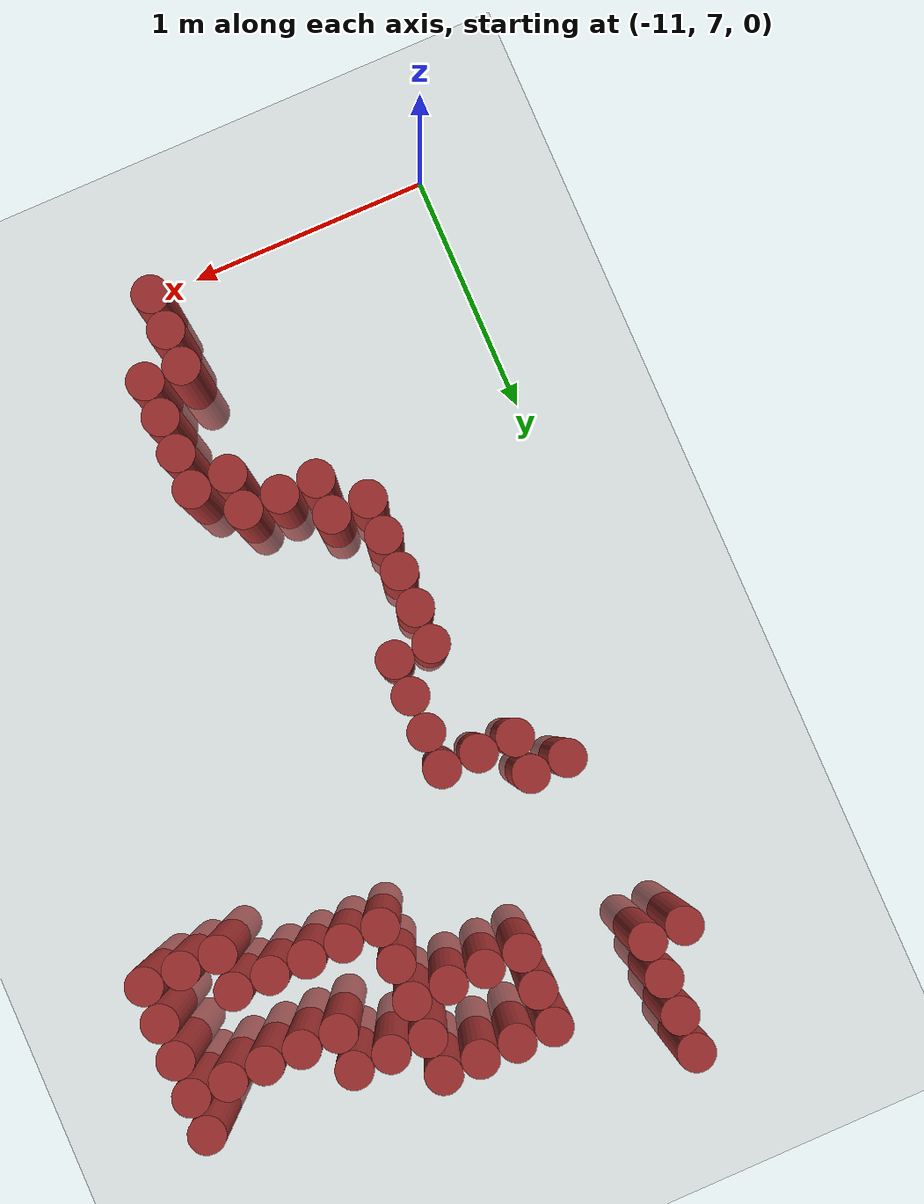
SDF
<sdf version="1.6">
 <world name="default">
  <model name="ground_plane">
   <static>1</static>
   <link name="link">
    <collision name="collision">
     <geometry><plane><normal>0 0 1</normal><size>100 100</size></plane></geometry>
     <surface><friction><ode><mu>100</mu><mu2>50</mu2></ode></friction></surface>
    </collision>
    <visual name="visual">
     <cast_shadows>0</cast_shadows>
     <geometry><plane><normal>0 0 1</normal><size>100 100</size></plane></geometry>
     <material>
      <script><uri>file://media/materials/scripts/gazebo.material</uri><name>Gazebo/Grey</name></script>
     </material>
    </visual>
   </link>
  </model>
  <model name="unit_cylinder_327">
   <static>1</static>
   <pose>-10.725 10.125 0 0 -0 0</pose>
   <link name="link">
    <inertial>
     <mass>1</mass>
     <inertia><ixx>0.145833</ixx><ixy>0</ixy><ixz>0</ixz><iyy>0.145833</iyy><iyz>0</iyz><izz>0.125</izz></inertia>
    </inertial>
    <collision name="collision">
     <geometry><cylinder><radius>0.075</radius><length>1</length></cylinder></geometry>
    </collision>
    <visual name="visual">
     <geometry><cylinder><radius>0.075</radius><length>1</length></cylinder></geometry>
     <material><ambient>0.648 0.192 0.192 1</ambient><diffuse>0.648 0.192 0.192 1</diffuse></material>
     <material>
      <script><name>Gazebo/Grey</name><uri>file://media/materials/scripts/gazebo.material</uri></script>
     </material>
    </visual>
   </link>
  </model>
  <model name="unit_cylinder_345">
   <static>1</static>
   <pose>-10.575 9.375 0 0 -0 0</pose>
   <link name="link">
    <inertial>
     <mass>1</mass>
     <inertia><ixx>0.145833</ixx><ixy>0</ixy><ixz>0</ixz><iyy>0.145833</iyy><iyz>0</iyz><izz>0.125</izz></inertia>
    </inertial>
    <collision name="collision">
     <geometry><cylinder><radius>0.075</radius><length>1</length></cylinder></geometry>
    </collision>
    <visual name="visual">
     <geometry><cylinder><radius>0.075</radius><length>1</length></cylinder></geometry>
     <material><ambient>0.648 0.192 0.192 1</ambient><diffuse>0.648 0.192 0.192 1</diffuse></material>
     <material>
      <script><name>Gazebo/Grey</name><uri>file://media/materials/scripts/gazebo.material</uri></script>
     </material>
    </visual>
   </link>
  </model>
  <model name="unit_cylinder_346">
   <static>1</static>
   <pose>-10.575 10.125 0 0 -0 0</pose>
   <link name="link">
    <inertial>
     <mass>1</mass>
     <inertia><ixx>0.145833</ixx><ixy>0</ixy><ixz>0</ixz><iyy>0.145833</iyy><iyz>0</iyz><izz>0.125</izz></inertia>
    </inertial>
    <collision name="collision">
     <geometry><cylinder><radius>0.075</radius><length>1</length></cylinder></geometry>
    </collision>
    <visual name="visual">
     <geometry><cylinder><radius>0.075</radius><length>1</length></cylinder></geometry>
     <material><ambient>0.648 0.192 0.192 1</ambient><diffuse>0.648 0.192 0.192 1</diffuse></material>
     <material>
      <script><name>Gazebo/Grey</name><uri>file://media/materials/scripts/gazebo.material</uri></script>
     </material>
    </visual>
   </link>
  </model>
  <model name="unit_cylinder_347">
   <static>1</static>
   <pose>-10.575 10.275 0 0 -0 0</pose>
   <link name="link">
    <inertial>
     <mass>1</mass>
     <inertia><ixx>0.145833</ixx><ixy>0</ixy><ixz>0</ixz><iyy>0.145833</iyy><iyz>0</iyz><izz>0.125</izz></inertia>
    </inertial>
    <collision name="collision">
     <geometry><cylinder><radius>0.075</radius><length>1</length></cylinder></geometry>
    </collision>
    <visual name="visual">
     <geometry><cylinder><radius>0.075</radius><length>1</length></cylinder></geometry>
     <material><ambient>0.648 0.192 0.192 1</ambient><diffuse>0.648 0.192 0.192 1</diffuse></material>
     <material>
      <script><name>Gazebo/Grey</name><uri>file://media/materials/scripts/gazebo.material</uri></script>
     </material>
    </visual>
   </link>
  </model>
  <model name="unit_cylinder_348">
   <static>1</static>
   <pose>-10.575 10.425 0 0 -0 0</pose>
   <link name="link">
    <inertial>
     <mass>1</mass>
     <inertia><ixx>0.145833</ixx><ixy>0</ixy><ixz>0</ixz><iyy>0.145833</iyy><iyz>0</iyz><izz>0.125</izz></inertia>
    </inertial>
    <collision name="collision">
     <geometry><cylinder><radius>0.075</radius><length>1</length></cylinder></geometry>
    </collision>
    <visual name="visual">
     <geometry><cylinder><radius>0.075</radius><length>1</length></cylinder></geometry>
     <material><ambient>0.648 0.192 0.192 1</ambient><diffuse>0.648 0.192 0.192 1</diffuse></material>
     <material>
      <script><name>Gazebo/Grey</name><uri>file://media/materials/scripts/gazebo.material</uri></script>
     </material>
    </visual>
   </link>
  </model>
  <model name="unit_cylinder_349">
   <static>1</static>
   <pose>-10.575 10.575 0 0 -0 0</pose>
   <link name="link">
    <inertial>
     <mass>1</mass>
     <inertia><ixx>0.145833</ixx><ixy>0</ixy><ixz>0</ixz><iyy>0.145833</iyy><iyz>0</iyz><izz>0.125</izz></inertia>
    </inertial>
    <collision name="collision">
     <geometry><cylinder><radius>0.075</radius><length>1</length></cylinder></geometry>
    </collision>
    <visual name="visual">
     <geometry><cylinder><radius>0.075</radius><length>1</length></cylinder></geometry>
     <material><ambient>0.648 0.192 0.192 1</ambient><diffuse>0.648 0.192 0.192 1</diffuse></material>
     <material>
      <script><name>Gazebo/Grey</name><uri>file://media/materials/scripts/gazebo.material</uri></script>
     </material>
    </visual>
   </link>
  </model>
  <model name="unit_cylinder_370">
   <static>1</static>
   <pose>-10.425 9.225 0 0 -0 0</pose>
   <link name="link">
    <inertial>
     <mass>1</mass>
     <inertia><ixx>0.145833</ixx><ixy>0</ixy><ixz>0</ixz><iyy>0.145833</iyy><iyz>0</iyz><izz>0.125</izz></inertia>
    </inertial>
    <collision name="collision">
     <geometry><cylinder><radius>0.075</radius><length>1</length></cylinder></geometry>
    </collision>
    <visual name="visual">
     <geometry><cylinder><radius>0.075</radius><length>1</length></cylinder></geometry>
     <material><ambient>0.648 0.192 0.192 1</ambient><diffuse>0.648 0.192 0.192 1</diffuse></material>
     <material>
      <script><name>Gazebo/Grey</name><uri>file://media/materials/scripts/gazebo.material</uri></script>
     </material>
    </visual>
   </link>
  </model>
  <model name="unit_cylinder_371">
   <static>1</static>
   <pose>-10.425 9.375 0 0 -0 0</pose>
   <link name="link">
    <inertial>
     <mass>1</mass>
     <inertia><ixx>0.145833</ixx><ixy>0</ixy><ixz>0</ixz><iyy>0.145833</iyy><iyz>0</iyz><izz>0.125</izz></inertia>
    </inertial>
    <collision name="collision">
     <geometry><cylinder><radius>0.075</radius><length>1</length></cylinder></geometry>
    </collision>
    <visual name="visual">
     <geometry><cylinder><radius>0.075</radius><length>1</length></cylinder></geometry>
     <material><ambient>0.648 0.192 0.192 1</ambient><diffuse>0.648 0.192 0.192 1</diffuse></material>
     <material>
      <script><name>Gazebo/Grey</name><uri>file://media/materials/scripts/gazebo.material</uri></script>
     </material>
    </visual>
   </link>
  </model>
  <model name="unit_cylinder_380">
   <static>1</static>
   <pose>-10.275 8.175 0 0 -0 0</pose>
   <link name="link">
    <inertial>
     <mass>1</mass>
     <inertia><ixx>0.145833</ixx><ixy>0</ixy><ixz>0</ixz><iyy>0.145833</iyy><iyz>0</iyz><izz>0.125</izz></inertia>
    </inertial>
    <collision name="collision">
     <geometry><cylinder><radius>0.075</radius><length>1</length></cylinder></geometry>
    </collision>
    <visual name="visual">
     <geometry><cylinder><radius>0.075</radius><length>1</length></cylinder></geometry>
     <material><ambient>0.648 0.192 0.192 1</ambient><diffuse>0.648 0.192 0.192 1</diffuse></material>
     <material>
      <script><name>Gazebo/Grey</name><uri>file://media/materials/scripts/gazebo.material</uri></script>
     </material>
    </visual>
   </link>
  </model>
  <model name="unit_cylinder_381">
   <static>1</static>
   <pose>-10.275 8.325 0 0 -0 0</pose>
   <link name="link">
    <inertial>
     <mass>1</mass>
     <inertia><ixx>0.145833</ixx><ixy>0</ixy><ixz>0</ixz><iyy>0.145833</iyy><iyz>0</iyz><izz>0.125</izz></inertia>
    </inertial>
    <collision name="collision">
     <geometry><cylinder><radius>0.075</radius><length>1</length></cylinder></geometry>
    </collision>
    <visual name="visual">
     <geometry><cylinder><radius>0.075</radius><length>1</length></cylinder></geometry>
     <material><ambient>0.648 0.192 0.192 1</ambient><diffuse>0.648 0.192 0.192 1</diffuse></material>
     <material>
      <script><name>Gazebo/Grey</name><uri>file://media/materials/scripts/gazebo.material</uri></script>
     </material>
    </visual>
   </link>
  </model>
  <model name="unit_cylinder_382">
   <static>1</static>
   <pose>-10.275 8.475 0 0 -0 0</pose>
   <link name="link">
    <inertial>
     <mass>1</mass>
     <inertia><ixx>0.145833</ixx><ixy>0</ixy><ixz>0</ixz><iyy>0.145833</iyy><iyz>0</iyz><izz>0.125</izz></inertia>
    </inertial>
    <collision name="collision">
     <geometry><cylinder><radius>0.075</radius><length>1</length></cylinder></geometry>
    </collision>
    <visual name="visual">
     <geometry><cylinder><radius>0.075</radius><length>1</length></cylinder></geometry>
     <material><ambient>0.648 0.192 0.192 1</ambient><diffuse>0.648 0.192 0.192 1</diffuse></material>
     <material>
      <script><name>Gazebo/Grey</name><uri>file://media/materials/scripts/gazebo.material</uri></script>
     </material>
    </visual>
   </link>
  </model>
  <model name="unit_cylinder_383">
   <static>1</static>
   <pose>-10.275 8.625 0 0 -0 0</pose>
   <link name="link">
    <inertial>
     <mass>1</mass>
     <inertia><ixx>0.145833</ixx><ixy>0</ixy><ixz>0</ixz><iyy>0.145833</iyy><iyz>0</iyz><izz>0.125</izz></inertia>
    </inertial>
    <collision name="collision">
     <geometry><cylinder><radius>0.075</radius><length>1</length></cylinder></geometry>
    </collision>
    <visual name="visual">
     <geometry><cylinder><radius>0.075</radius><length>1</length></cylinder></geometry>
     <material><ambient>0.648 0.192 0.192 1</ambient><diffuse>0.648 0.192 0.192 1</diffuse></material>
     <material>
      <script><name>Gazebo/Grey</name><uri>file://media/materials/scripts/gazebo.material</uri></script>
     </material>
    </visual>
   </link>
  </model>
  <model name="unit_cylinder_384">
   <static>1</static>
   <pose>-10.275 8.775 0 0 -0 0</pose>
   <link name="link">
    <inertial>
     <mass>1</mass>
     <inertia><ixx>0.145833</ixx><ixy>0</ixy><ixz>0</ixz><iyy>0.145833</iyy><iyz>0</iyz><izz>0.125</izz></inertia>
    </inertial>
    <collision name="collision">
     <geometry><cylinder><radius>0.075</radius><length>1</length></cylinder></geometry>
    </collision>
    <visual name="visual">
     <geometry><cylinder><radius>0.075</radius><length>1</length></cylinder></geometry>
     <material><ambient>0.648 0.192 0.192 1</ambient><diffuse>0.648 0.192 0.192 1</diffuse></material>
     <material>
      <script><name>Gazebo/Grey</name><uri>file://media/materials/scripts/gazebo.material</uri></script>
     </material>
    </visual>
   </link>
  </model>
  <model name="unit_cylinder_385">
   <static>1</static>
   <pose>-10.275 9.225 0 0 -0 0</pose>
   <link name="link">
    <inertial>
     <mass>1</mass>
     <inertia><ixx>0.145833</ixx><ixy>0</ixy><ixz>0</ixz><iyy>0.145833</iyy><iyz>0</iyz><izz>0.125</izz></inertia>
    </inertial>
    <collision name="collision">
     <geometry><cylinder><radius>0.075</radius><length>1</length></cylinder></geometry>
    </collision>
    <visual name="visual">
     <geometry><cylinder><radius>0.075</radius><length>1</length></cylinder></geometry>
     <material><ambient>0.648 0.192 0.192 1</ambient><diffuse>0.648 0.192 0.192 1</diffuse></material>
     <material>
      <script><name>Gazebo/Grey</name><uri>file://media/materials/scripts/gazebo.material</uri></script>
     </material>
    </visual>
   </link>
  </model>
  <model name="unit_cylinder_403">
   <static>1</static>
   <pose>-10.125 8.025 0 0 -0 0</pose>
   <link name="link">
    <inertial>
     <mass>1</mass>
     <inertia><ixx>0.145833</ixx><ixy>0</ixy><ixz>0</ixz><iyy>0.145833</iyy><iyz>0</iyz><izz>0.125</izz></inertia>
    </inertial>
    <collision name="collision">
     <geometry><cylinder><radius>0.075</radius><length>1</length></cylinder></geometry>
    </collision>
    <visual name="visual">
     <geometry><cylinder><radius>0.075</radius><length>1</length></cylinder></geometry>
     <material><ambient>0.648 0.192 0.192 1</ambient><diffuse>0.648 0.192 0.192 1</diffuse></material>
     <material>
      <script><name>Gazebo/Grey</name><uri>file://media/materials/scripts/gazebo.material</uri></script>
     </material>
    </visual>
   </link>
  </model>
  <model name="unit_cylinder_404">
   <static>1</static>
   <pose>-10.125 8.175 0 0 -0 0</pose>
   <link name="link">
    <inertial>
     <mass>1</mass>
     <inertia><ixx>0.145833</ixx><ixy>0</ixy><ixz>0</ixz><iyy>0.145833</iyy><iyz>0</iyz><izz>0.125</izz></inertia>
    </inertial>
    <collision name="collision">
     <geometry><cylinder><radius>0.075</radius><length>1</length></cylinder></geometry>
    </collision>
    <visual name="visual">
     <geometry><cylinder><radius>0.075</radius><length>1</length></cylinder></geometry>
     <material><ambient>0.648 0.192 0.192 1</ambient><diffuse>0.648 0.192 0.192 1</diffuse></material>
     <material>
      <script><name>Gazebo/Grey</name><uri>file://media/materials/scripts/gazebo.material</uri></script>
     </material>
    </visual>
   </link>
  </model>
  <model name="unit_cylinder_405">
   <static>1</static>
   <pose>-10.125 8.775 0 0 -0 0</pose>
   <link name="link">
    <inertial>
     <mass>1</mass>
     <inertia><ixx>0.145833</ixx><ixy>0</ixy><ixz>0</ixz><iyy>0.145833</iyy><iyz>0</iyz><izz>0.125</izz></inertia>
    </inertial>
    <collision name="collision">
     <geometry><cylinder><radius>0.075</radius><length>1</length></cylinder></geometry>
    </collision>
    <visual name="visual">
     <geometry><cylinder><radius>0.075</radius><length>1</length></cylinder></geometry>
     <material><ambient>0.648 0.192 0.192 1</ambient><diffuse>0.648 0.192 0.192 1</diffuse></material>
     <material>
      <script><name>Gazebo/Grey</name><uri>file://media/materials/scripts/gazebo.material</uri></script>
     </material>
    </visual>
   </link>
  </model>
  <model name="unit_cylinder_406">
   <static>1</static>
   <pose>-10.125 8.925 0 0 -0 0</pose>
   <link name="link">
    <inertial>
     <mass>1</mass>
     <inertia><ixx>0.145833</ixx><ixy>0</ixy><ixz>0</ixz><iyy>0.145833</iyy><iyz>0</iyz><izz>0.125</izz></inertia>
    </inertial>
    <collision name="collision">
     <geometry><cylinder><radius>0.075</radius><length>1</length></cylinder></geometry>
    </collision>
    <visual name="visual">
     <geometry><cylinder><radius>0.075</radius><length>1</length></cylinder></geometry>
     <material><ambient>0.648 0.192 0.192 1</ambient><diffuse>0.648 0.192 0.192 1</diffuse></material>
     <material>
      <script><name>Gazebo/Grey</name><uri>file://media/materials/scripts/gazebo.material</uri></script>
     </material>
    </visual>
   </link>
  </model>
  <model name="unit_cylinder_407">
   <static>1</static>
   <pose>-10.125 9.075 0 0 -0 0</pose>
   <link name="link">
    <inertial>
     <mass>1</mass>
     <inertia><ixx>0.145833</ixx><ixy>0</ixy><ixz>0</ixz><iyy>0.145833</iyy><iyz>0</iyz><izz>0.125</izz></inertia>
    </inertial>
    <collision name="collision">
     <geometry><cylinder><radius>0.075</radius><length>1</length></cylinder></geometry>
    </collision>
    <visual name="visual">
     <geometry><cylinder><radius>0.075</radius><length>1</length></cylinder></geometry>
     <material><ambient>0.648 0.192 0.192 1</ambient><diffuse>0.648 0.192 0.192 1</diffuse></material>
     <material>
      <script><name>Gazebo/Grey</name><uri>file://media/materials/scripts/gazebo.material</uri></script>
     </material>
    </visual>
   </link>
  </model>
  <model name="unit_cylinder_408">
   <static>1</static>
   <pose>-10.125 9.225 0 0 -0 0</pose>
   <link name="link">
    <inertial>
     <mass>1</mass>
     <inertia><ixx>0.145833</ixx><ixy>0</ixy><ixz>0</ixz><iyy>0.145833</iyy><iyz>0</iyz><izz>0.125</izz></inertia>
    </inertial>
    <collision name="collision">
     <geometry><cylinder><radius>0.075</radius><length>1</length></cylinder></geometry>
    </collision>
    <visual name="visual">
     <geometry><cylinder><radius>0.075</radius><length>1</length></cylinder></geometry>
     <material><ambient>0.648 0.192 0.192 1</ambient><diffuse>0.648 0.192 0.192 1</diffuse></material>
     <material>
      <script><name>Gazebo/Grey</name><uri>file://media/materials/scripts/gazebo.material</uri></script>
     </material>
    </visual>
   </link>
  </model>
  <model name="unit_cylinder_409">
   <static>1</static>
   <pose>-10.125 9.975 0 0 -0 0</pose>
   <link name="link">
    <inertial>
     <mass>1</mass>
     <inertia><ixx>0.145833</ixx><ixy>0</ixy><ixz>0</ixz><iyy>0.145833</iyy><iyz>0</iyz><izz>0.125</izz></inertia>
    </inertial>
    <collision name="collision">
     <geometry><cylinder><radius>0.075</radius><length>1</length></cylinder></geometry>
    </collision>
    <visual name="visual">
     <geometry><cylinder><radius>0.075</radius><length>1</length></cylinder></geometry>
     <material><ambient>0.648 0.192 0.192 1</ambient><diffuse>0.648 0.192 0.192 1</diffuse></material>
     <material>
      <script><name>Gazebo/Grey</name><uri>file://media/materials/scripts/gazebo.material</uri></script>
     </material>
    </visual>
   </link>
  </model>
  <model name="unit_cylinder_410">
   <static>1</static>
   <pose>-10.125 10.125 0 0 -0 0</pose>
   <link name="link">
    <inertial>
     <mass>1</mass>
     <inertia><ixx>0.145833</ixx><ixy>0</ixy><ixz>0</ixz><iyy>0.145833</iyy><iyz>0</iyz><izz>0.125</izz></inertia>
    </inertial>
    <collision name="collision">
     <geometry><cylinder><radius>0.075</radius><length>1</length></cylinder></geometry>
    </collision>
    <visual name="visual">
     <geometry><cylinder><radius>0.075</radius><length>1</length></cylinder></geometry>
     <material><ambient>0.648 0.192 0.192 1</ambient><diffuse>0.648 0.192 0.192 1</diffuse></material>
     <material>
      <script><name>Gazebo/Grey</name><uri>file://media/materials/scripts/gazebo.material</uri></script>
     </material>
    </visual>
   </link>
  </model>
  <model name="unit_cylinder_411">
   <static>1</static>
   <pose>-10.125 10.275 0 0 -0 0</pose>
   <link name="link">
    <inertial>
     <mass>1</mass>
     <inertia><ixx>0.145833</ixx><ixy>0</ixy><ixz>0</ixz><iyy>0.145833</iyy><iyz>0</iyz><izz>0.125</izz></inertia>
    </inertial>
    <collision name="collision">
     <geometry><cylinder><radius>0.075</radius><length>1</length></cylinder></geometry>
    </collision>
    <visual name="visual">
     <geometry><cylinder><radius>0.075</radius><length>1</length></cylinder></geometry>
     <material><ambient>0.648 0.192 0.192 1</ambient><diffuse>0.648 0.192 0.192 1</diffuse></material>
     <material>
      <script><name>Gazebo/Grey</name><uri>file://media/materials/scripts/gazebo.material</uri></script>
     </material>
    </visual>
   </link>
  </model>
  <model name="unit_cylinder_421">
   <static>1</static>
   <pose>-9.975 8.025 0 0 -0 0</pose>
   <link name="link">
    <inertial>
     <mass>1</mass>
     <inertia><ixx>0.145833</ixx><ixy>0</ixy><ixz>0</ixz><iyy>0.145833</iyy><iyz>0</iyz><izz>0.125</izz></inertia>
    </inertial>
    <collision name="collision">
     <geometry><cylinder><radius>0.075</radius><length>1</length></cylinder></geometry>
    </collision>
    <visual name="visual">
     <geometry><cylinder><radius>0.075</radius><length>1</length></cylinder></geometry>
     <material><ambient>0.648 0.192 0.192 1</ambient><diffuse>0.648 0.192 0.192 1</diffuse></material>
     <material>
      <script><name>Gazebo/Grey</name><uri>file://media/materials/scripts/gazebo.material</uri></script>
     </material>
    </visual>
   </link>
  </model>
  <model name="unit_cylinder_422">
   <static>1</static>
   <pose>-9.975 9.975 0 0 -0 0</pose>
   <link name="link">
    <inertial>
     <mass>1</mass>
     <inertia><ixx>0.145833</ixx><ixy>0</ixy><ixz>0</ixz><iyy>0.145833</iyy><iyz>0</iyz><izz>0.125</izz></inertia>
    </inertial>
    <collision name="collision">
     <geometry><cylinder><radius>0.075</radius><length>1</length></cylinder></geometry>
    </collision>
    <visual name="visual">
     <geometry><cylinder><radius>0.075</radius><length>1</length></cylinder></geometry>
     <material><ambient>0.648 0.192 0.192 1</ambient><diffuse>0.648 0.192 0.192 1</diffuse></material>
     <material>
      <script><name>Gazebo/Grey</name><uri>file://media/materials/scripts/gazebo.material</uri></script>
     </material>
    </visual>
   </link>
  </model>
  <model name="unit_cylinder_423">
   <static>1</static>
   <pose>-9.975 10.275 0 0 -0 0</pose>
   <link name="link">
    <inertial>
     <mass>1</mass>
     <inertia><ixx>0.145833</ixx><ixy>0</ixy><ixz>0</ixz><iyy>0.145833</iyy><iyz>0</iyz><izz>0.125</izz></inertia>
    </inertial>
    <collision name="collision">
     <geometry><cylinder><radius>0.075</radius><length>1</length></cylinder></geometry>
    </collision>
    <visual name="visual">
     <geometry><cylinder><radius>0.075</radius><length>1</length></cylinder></geometry>
     <material><ambient>0.648 0.192 0.192 1</ambient><diffuse>0.648 0.192 0.192 1</diffuse></material>
     <material>
      <script><name>Gazebo/Grey</name><uri>file://media/materials/scripts/gazebo.material</uri></script>
     </material>
    </visual>
   </link>
  </model>
  <model name="unit_cylinder_432">
   <static>1</static>
   <pose>-9.825 7.125 0 0 -0 0</pose>
   <link name="link">
    <inertial>
     <mass>1</mass>
     <inertia><ixx>0.145833</ixx><ixy>0</ixy><ixz>0</ixz><iyy>0.145833</iyy><iyz>0</iyz><izz>0.125</izz></inertia>
    </inertial>
    <collision name="collision">
     <geometry><cylinder><radius>0.075</radius><length>1</length></cylinder></geometry>
    </collision>
    <visual name="visual">
     <geometry><cylinder><radius>0.075</radius><length>1</length></cylinder></geometry>
     <material><ambient>0.648 0.192 0.192 1</ambient><diffuse>0.648 0.192 0.192 1</diffuse></material>
     <material>
      <script><name>Gazebo/Grey</name><uri>file://media/materials/scripts/gazebo.material</uri></script>
     </material>
    </visual>
   </link>
  </model>
  <model name="unit_cylinder_433">
   <static>1</static>
   <pose>-9.825 7.275 0 0 -0 0</pose>
   <link name="link">
    <inertial>
     <mass>1</mass>
     <inertia><ixx>0.145833</ixx><ixy>0</ixy><ixz>0</ixz><iyy>0.145833</iyy><iyz>0</iyz><izz>0.125</izz></inertia>
    </inertial>
    <collision name="collision">
     <geometry><cylinder><radius>0.075</radius><length>1</length></cylinder></geometry>
    </collision>
    <visual name="visual">
     <geometry><cylinder><radius>0.075</radius><length>1</length></cylinder></geometry>
     <material><ambient>0.648 0.192 0.192 1</ambient><diffuse>0.648 0.192 0.192 1</diffuse></material>
     <material>
      <script><name>Gazebo/Grey</name><uri>file://media/materials/scripts/gazebo.material</uri></script>
     </material>
    </visual>
   </link>
  </model>
  <model name="unit_cylinder_434">
   <static>1</static>
   <pose>-9.825 7.425 0 0 -0 0</pose>
   <link name="link">
    <inertial>
     <mass>1</mass>
     <inertia><ixx>0.145833</ixx><ixy>0</ixy><ixz>0</ixz><iyy>0.145833</iyy><iyz>0</iyz><izz>0.125</izz></inertia>
    </inertial>
    <collision name="collision">
     <geometry><cylinder><radius>0.075</radius><length>1</length></cylinder></geometry>
    </collision>
    <visual name="visual">
     <geometry><cylinder><radius>0.075</radius><length>1</length></cylinder></geometry>
     <material><ambient>0.648 0.192 0.192 1</ambient><diffuse>0.648 0.192 0.192 1</diffuse></material>
     <material>
      <script><name>Gazebo/Grey</name><uri>file://media/materials/scripts/gazebo.material</uri></script>
     </material>
    </visual>
   </link>
  </model>
  <model name="unit_cylinder_435">
   <static>1</static>
   <pose>-9.825 7.875 0 0 -0 0</pose>
   <link name="link">
    <inertial>
     <mass>1</mass>
     <inertia><ixx>0.145833</ixx><ixy>0</ixy><ixz>0</ixz><iyy>0.145833</iyy><iyz>0</iyz><izz>0.125</izz></inertia>
    </inertial>
    <collision name="collision">
     <geometry><cylinder><radius>0.075</radius><length>1</length></cylinder></geometry>
    </collision>
    <visual name="visual">
     <geometry><cylinder><radius>0.075</radius><length>1</length></cylinder></geometry>
     <material><ambient>0.648 0.192 0.192 1</ambient><diffuse>0.648 0.192 0.192 1</diffuse></material>
     <material>
      <script><name>Gazebo/Grey</name><uri>file://media/materials/scripts/gazebo.material</uri></script>
     </material>
    </visual>
   </link>
  </model>
  <model name="unit_cylinder_436">
   <static>1</static>
   <pose>-9.825 8.025 0 0 -0 0</pose>
   <link name="link">
    <inertial>
     <mass>1</mass>
     <inertia><ixx>0.145833</ixx><ixy>0</ixy><ixz>0</ixz><iyy>0.145833</iyy><iyz>0</iyz><izz>0.125</izz></inertia>
    </inertial>
    <collision name="collision">
     <geometry><cylinder><radius>0.075</radius><length>1</length></cylinder></geometry>
    </collision>
    <visual name="visual">
     <geometry><cylinder><radius>0.075</radius><length>1</length></cylinder></geometry>
     <material><ambient>0.648 0.192 0.192 1</ambient><diffuse>0.648 0.192 0.192 1</diffuse></material>
     <material>
      <script><name>Gazebo/Grey</name><uri>file://media/materials/scripts/gazebo.material</uri></script>
     </material>
    </visual>
   </link>
  </model>
  <model name="unit_cylinder_437">
   <static>1</static>
   <pose>-9.825 9.975 0 0 -0 0</pose>
   <link name="link">
    <inertial>
     <mass>1</mass>
     <inertia><ixx>0.145833</ixx><ixy>0</ixy><ixz>0</ixz><iyy>0.145833</iyy><iyz>0</iyz><izz>0.125</izz></inertia>
    </inertial>
    <collision name="collision">
     <geometry><cylinder><radius>0.075</radius><length>1</length></cylinder></geometry>
    </collision>
    <visual name="visual">
     <geometry><cylinder><radius>0.075</radius><length>1</length></cylinder></geometry>
     <material><ambient>0.648 0.192 0.192 1</ambient><diffuse>0.648 0.192 0.192 1</diffuse></material>
     <material>
      <script><name>Gazebo/Grey</name><uri>file://media/materials/scripts/gazebo.material</uri></script>
     </material>
    </visual>
   </link>
  </model>
  <model name="unit_cylinder_438">
   <static>1</static>
   <pose>-9.825 10.275 0 0 -0 0</pose>
   <link name="link">
    <inertial>
     <mass>1</mass>
     <inertia><ixx>0.145833</ixx><ixy>0</ixy><ixz>0</ixz><iyy>0.145833</iyy><iyz>0</iyz><izz>0.125</izz></inertia>
    </inertial>
    <collision name="collision">
     <geometry><cylinder><radius>0.075</radius><length>1</length></cylinder></geometry>
    </collision>
    <visual name="visual">
     <geometry><cylinder><radius>0.075</radius><length>1</length></cylinder></geometry>
     <material><ambient>0.648 0.192 0.192 1</ambient><diffuse>0.648 0.192 0.192 1</diffuse></material>
     <material>
      <script><name>Gazebo/Grey</name><uri>file://media/materials/scripts/gazebo.material</uri></script>
     </material>
    </visual>
   </link>
  </model>
  <model name="unit_cylinder_457">
   <static>1</static>
   <pose>-9.675 7.425 0 0 -0 0</pose>
   <link name="link">
    <inertial>
     <mass>1</mass>
     <inertia><ixx>0.145833</ixx><ixy>0</ixy><ixz>0</ixz><iyy>0.145833</iyy><iyz>0</iyz><izz>0.125</izz></inertia>
    </inertial>
    <collision name="collision">
     <geometry><cylinder><radius>0.075</radius><length>1</length></cylinder></geometry>
    </collision>
    <visual name="visual">
     <geometry><cylinder><radius>0.075</radius><length>1</length></cylinder></geometry>
     <material><ambient>0.648 0.192 0.192 1</ambient><diffuse>0.648 0.192 0.192 1</diffuse></material>
     <material>
      <script><name>Gazebo/Grey</name><uri>file://media/materials/scripts/gazebo.material</uri></script>
     </material>
    </visual>
   </link>
  </model>
  <model name="unit_cylinder_458">
   <static>1</static>
   <pose>-9.675 7.575 0 0 -0 0</pose>
   <link name="link">
    <inertial>
     <mass>1</mass>
     <inertia><ixx>0.145833</ixx><ixy>0</ixy><ixz>0</ixz><iyy>0.145833</iyy><iyz>0</iyz><izz>0.125</izz></inertia>
    </inertial>
    <collision name="collision">
     <geometry><cylinder><radius>0.075</radius><length>1</length></cylinder></geometry>
    </collision>
    <visual name="visual">
     <geometry><cylinder><radius>0.075</radius><length>1</length></cylinder></geometry>
     <material><ambient>0.648 0.192 0.192 1</ambient><diffuse>0.648 0.192 0.192 1</diffuse></material>
     <material>
      <script><name>Gazebo/Grey</name><uri>file://media/materials/scripts/gazebo.material</uri></script>
     </material>
    </visual>
   </link>
  </model>
  <model name="unit_cylinder_459">
   <static>1</static>
   <pose>-9.675 7.725 0 0 -0 0</pose>
   <link name="link">
    <inertial>
     <mass>1</mass>
     <inertia><ixx>0.145833</ixx><ixy>0</ixy><ixz>0</ixz><iyy>0.145833</iyy><iyz>0</iyz><izz>0.125</izz></inertia>
    </inertial>
    <collision name="collision">
     <geometry><cylinder><radius>0.075</radius><length>1</length></cylinder></geometry>
    </collision>
    <visual name="visual">
     <geometry><cylinder><radius>0.075</radius><length>1</length></cylinder></geometry>
     <material><ambient>0.648 0.192 0.192 1</ambient><diffuse>0.648 0.192 0.192 1</diffuse></material>
     <material>
      <script><name>Gazebo/Grey</name><uri>file://media/materials/scripts/gazebo.material</uri></script>
     </material>
    </visual>
   </link>
  </model>
  <model name="unit_cylinder_460">
   <static>1</static>
   <pose>-9.675 7.875 0 0 -0 0</pose>
   <link name="link">
    <inertial>
     <mass>1</mass>
     <inertia><ixx>0.145833</ixx><ixy>0</ixy><ixz>0</ixz><iyy>0.145833</iyy><iyz>0</iyz><izz>0.125</izz></inertia>
    </inertial>
    <collision name="collision">
     <geometry><cylinder><radius>0.075</radius><length>1</length></cylinder></geometry>
    </collision>
    <visual name="visual">
     <geometry><cylinder><radius>0.075</radius><length>1</length></cylinder></geometry>
     <material><ambient>0.648 0.192 0.192 1</ambient><diffuse>0.648 0.192 0.192 1</diffuse></material>
     <material>
      <script><name>Gazebo/Grey</name><uri>file://media/materials/scripts/gazebo.material</uri></script>
     </material>
    </visual>
   </link>
  </model>
  <model name="unit_cylinder_461">
   <static>1</static>
   <pose>-9.675 9.675 0 0 -0 0</pose>
   <link name="link">
    <inertial>
     <mass>1</mass>
     <inertia><ixx>0.145833</ixx><ixy>0</ixy><ixz>0</ixz><iyy>0.145833</iyy><iyz>0</iyz><izz>0.125</izz></inertia>
    </inertial>
    <collision name="collision">
     <geometry><cylinder><radius>0.075</radius><length>1</length></cylinder></geometry>
    </collision>
    <visual name="visual">
     <geometry><cylinder><radius>0.075</radius><length>1</length></cylinder></geometry>
     <material><ambient>0.648 0.192 0.192 1</ambient><diffuse>0.648 0.192 0.192 1</diffuse></material>
     <material>
      <script><name>Gazebo/Grey</name><uri>file://media/materials/scripts/gazebo.material</uri></script>
     </material>
    </visual>
   </link>
  </model>
  <model name="unit_cylinder_462">
   <static>1</static>
   <pose>-9.675 9.825 0 0 -0 0</pose>
   <link name="link">
    <inertial>
     <mass>1</mass>
     <inertia><ixx>0.145833</ixx><ixy>0</ixy><ixz>0</ixz><iyy>0.145833</iyy><iyz>0</iyz><izz>0.125</izz></inertia>
    </inertial>
    <collision name="collision">
     <geometry><cylinder><radius>0.075</radius><length>1</length></cylinder></geometry>
    </collision>
    <visual name="visual">
     <geometry><cylinder><radius>0.075</radius><length>1</length></cylinder></geometry>
     <material><ambient>0.648 0.192 0.192 1</ambient><diffuse>0.648 0.192 0.192 1</diffuse></material>
     <material>
      <script><name>Gazebo/Grey</name><uri>file://media/materials/scripts/gazebo.material</uri></script>
     </material>
    </visual>
   </link>
  </model>
  <model name="unit_cylinder_463">
   <static>1</static>
   <pose>-9.675 9.975 0 0 -0 0</pose>
   <link name="link">
    <inertial>
     <mass>1</mass>
     <inertia><ixx>0.145833</ixx><ixy>0</ixy><ixz>0</ixz><iyy>0.145833</iyy><iyz>0</iyz><izz>0.125</izz></inertia>
    </inertial>
    <collision name="collision">
     <geometry><cylinder><radius>0.075</radius><length>1</length></cylinder></geometry>
    </collision>
    <visual name="visual">
     <geometry><cylinder><radius>0.075</radius><length>1</length></cylinder></geometry>
     <material><ambient>0.648 0.192 0.192 1</ambient><diffuse>0.648 0.192 0.192 1</diffuse></material>
     <material>
      <script><name>Gazebo/Grey</name><uri>file://media/materials/scripts/gazebo.material</uri></script>
     </material>
    </visual>
   </link>
  </model>
  <model name="unit_cylinder_464">
   <static>1</static>
   <pose>-9.675 10.125 0 0 -0 0</pose>
   <link name="link">
    <inertial>
     <mass>1</mass>
     <inertia><ixx>0.145833</ixx><ixy>0</ixy><ixz>0</ixz><iyy>0.145833</iyy><iyz>0</iyz><izz>0.125</izz></inertia>
    </inertial>
    <collision name="collision">
     <geometry><cylinder><radius>0.075</radius><length>1</length></cylinder></geometry>
    </collision>
    <visual name="visual">
     <geometry><cylinder><radius>0.075</radius><length>1</length></cylinder></geometry>
     <material><ambient>0.648 0.192 0.192 1</ambient><diffuse>0.648 0.192 0.192 1</diffuse></material>
     <material>
      <script><name>Gazebo/Grey</name><uri>file://media/materials/scripts/gazebo.material</uri></script>
     </material>
    </visual>
   </link>
  </model>
  <model name="unit_cylinder_465">
   <static>1</static>
   <pose>-9.675 10.275 0 0 -0 0</pose>
   <link name="link">
    <inertial>
     <mass>1</mass>
     <inertia><ixx>0.145833</ixx><ixy>0</ixy><ixz>0</ixz><iyy>0.145833</iyy><iyz>0</iyz><izz>0.125</izz></inertia>
    </inertial>
    <collision name="collision">
     <geometry><cylinder><radius>0.075</radius><length>1</length></cylinder></geometry>
    </collision>
    <visual name="visual">
     <geometry><cylinder><radius>0.075</radius><length>1</length></cylinder></geometry>
     <material><ambient>0.648 0.192 0.192 1</ambient><diffuse>0.648 0.192 0.192 1</diffuse></material>
     <material>
      <script><name>Gazebo/Grey</name><uri>file://media/materials/scripts/gazebo.material</uri></script>
     </material>
    </visual>
   </link>
  </model>
  <model name="unit_cylinder_475">
   <static>1</static>
   <pose>-9.525 9.675 0 0 -0 0</pose>
   <link name="link">
    <inertial>
     <mass>1</mass>
     <inertia><ixx>0.145833</ixx><ixy>0</ixy><ixz>0</ixz><iyy>0.145833</iyy><iyz>0</iyz><izz>0.125</izz></inertia>
    </inertial>
    <collision name="collision">
     <geometry><cylinder><radius>0.075</radius><length>1</length></cylinder></geometry>
    </collision>
    <visual name="visual">
     <geometry><cylinder><radius>0.075</radius><length>1</length></cylinder></geometry>
     <material><ambient>0.648 0.192 0.192 1</ambient><diffuse>0.648 0.192 0.192 1</diffuse></material>
     <material>
      <script><name>Gazebo/Grey</name><uri>file://media/materials/scripts/gazebo.material</uri></script>
     </material>
    </visual>
   </link>
  </model>
  <model name="unit_cylinder_476">
   <static>1</static>
   <pose>-9.525 10.125 0 0 -0 0</pose>
   <link name="link">
    <inertial>
     <mass>1</mass>
     <inertia><ixx>0.145833</ixx><ixy>0</ixy><ixz>0</ixz><iyy>0.145833</iyy><iyz>0</iyz><izz>0.125</izz></inertia>
    </inertial>
    <collision name="collision">
     <geometry><cylinder><radius>0.075</radius><length>1</length></cylinder></geometry>
    </collision>
    <visual name="visual">
     <geometry><cylinder><radius>0.075</radius><length>1</length></cylinder></geometry>
     <material><ambient>0.648 0.192 0.192 1</ambient><diffuse>0.648 0.192 0.192 1</diffuse></material>
     <material>
      <script><name>Gazebo/Grey</name><uri>file://media/materials/scripts/gazebo.material</uri></script>
     </material>
    </visual>
   </link>
  </model>
  <model name="unit_cylinder_491">
   <static>1</static>
   <pose>-9.375 9.675 0 0 -0 0</pose>
   <link name="link">
    <inertial>
     <mass>1</mass>
     <inertia><ixx>0.145833</ixx><ixy>0</ixy><ixz>0</ixz><iyy>0.145833</iyy><iyz>0</iyz><izz>0.125</izz></inertia>
    </inertial>
    <collision name="collision">
     <geometry><cylinder><radius>0.075</radius><length>1</length></cylinder></geometry>
    </collision>
    <visual name="visual">
     <geometry><cylinder><radius>0.075</radius><length>1</length></cylinder></geometry>
     <material><ambient>0.648 0.192 0.192 1</ambient><diffuse>0.648 0.192 0.192 1</diffuse></material>
     <material>
      <script><name>Gazebo/Grey</name><uri>file://media/materials/scripts/gazebo.material</uri></script>
     </material>
    </visual>
   </link>
  </model>
  <model name="unit_cylinder_492">
   <static>1</static>
   <pose>-9.375 9.975 0 0 -0 0</pose>
   <link name="link">
    <inertial>
     <mass>1</mass>
     <inertia><ixx>0.145833</ixx><ixy>0</ixy><ixz>0</ixz><iyy>0.145833</iyy><iyz>0</iyz><izz>0.125</izz></inertia>
    </inertial>
    <collision name="collision">
     <geometry><cylinder><radius>0.075</radius><length>1</length></cylinder></geometry>
    </collision>
    <visual name="visual">
     <geometry><cylinder><radius>0.075</radius><length>1</length></cylinder></geometry>
     <material><ambient>0.648 0.192 0.192 1</ambient><diffuse>0.648 0.192 0.192 1</diffuse></material>
     <material>
      <script><name>Gazebo/Grey</name><uri>file://media/materials/scripts/gazebo.material</uri></script>
     </material>
    </visual>
   </link>
  </model>
  <model name="unit_cylinder_493">
   <static>1</static>
   <pose>-9.375 10.125 0 0 -0 0</pose>
   <link name="link">
    <inertial>
     <mass>1</mass>
     <inertia><ixx>0.145833</ixx><ixy>0</ixy><ixz>0</ixz><iyy>0.145833</iyy><iyz>0</iyz><izz>0.125</izz></inertia>
    </inertial>
    <collision name="collision">
     <geometry><cylinder><radius>0.075</radius><length>1</length></cylinder></geometry>
    </collision>
    <visual name="visual">
     <geometry><cylinder><radius>0.075</radius><length>1</length></cylinder></geometry>
     <material><ambient>0.648 0.192 0.192 1</ambient><diffuse>0.648 0.192 0.192 1</diffuse></material>
     <material>
      <script><name>Gazebo/Grey</name><uri>file://media/materials/scripts/gazebo.material</uri></script>
     </material>
    </visual>
   </link>
  </model>
  <model name="unit_cylinder_506">
   <static>1</static>
   <pose>-9.225 9.675 0 0 -0 0</pose>
   <link name="link">
    <inertial>
     <mass>1</mass>
     <inertia><ixx>0.145833</ixx><ixy>0</ixy><ixz>0</ixz><iyy>0.145833</iyy><iyz>0</iyz><izz>0.125</izz></inertia>
    </inertial>
    <collision name="collision">
     <geometry><cylinder><radius>0.075</radius><length>1</length></cylinder></geometry>
    </collision>
    <visual name="visual">
     <geometry><cylinder><radius>0.075</radius><length>1</length></cylinder></geometry>
     <material><ambient>0.648 0.192 0.192 1</ambient><diffuse>0.648 0.192 0.192 1</diffuse></material>
     <material>
      <script><name>Gazebo/Grey</name><uri>file://media/materials/scripts/gazebo.material</uri></script>
     </material>
    </visual>
   </link>
  </model>
  <model name="unit_cylinder_507">
   <static>1</static>
   <pose>-9.225 9.975 0 0 -0 0</pose>
   <link name="link">
    <inertial>
     <mass>1</mass>
     <inertia><ixx>0.145833</ixx><ixy>0</ixy><ixz>0</ixz><iyy>0.145833</iyy><iyz>0</iyz><izz>0.125</izz></inertia>
    </inertial>
    <collision name="collision">
     <geometry><cylinder><radius>0.075</radius><length>1</length></cylinder></geometry>
    </collision>
    <visual name="visual">
     <geometry><cylinder><radius>0.075</radius><length>1</length></cylinder></geometry>
     <material><ambient>0.648 0.192 0.192 1</ambient><diffuse>0.648 0.192 0.192 1</diffuse></material>
     <material>
      <script><name>Gazebo/Grey</name><uri>file://media/materials/scripts/gazebo.material</uri></script>
     </material>
    </visual>
   </link>
  </model>
  <model name="unit_cylinder_515">
   <static>1</static>
   <pose>-9.075 9.525 0 0 -0 0</pose>
   <link name="link">
    <inertial>
     <mass>1</mass>
     <inertia><ixx>0.145833</ixx><ixy>0</ixy><ixz>0</ixz><iyy>0.145833</iyy><iyz>0</iyz><izz>0.125</izz></inertia>
    </inertial>
    <collision name="collision">
     <geometry><cylinder><radius>0.075</radius><length>1</length></cylinder></geometry>
    </collision>
    <visual name="visual">
     <geometry><cylinder><radius>0.075</radius><length>1</length></cylinder></geometry>
     <material><ambient>0.648 0.192 0.192 1</ambient><diffuse>0.648 0.192 0.192 1</diffuse></material>
     <material>
      <script><name>Gazebo/Grey</name><uri>file://media/materials/scripts/gazebo.material</uri></script>
     </material>
    </visual>
   </link>
  </model>
  <model name="unit_cylinder_516">
   <static>1</static>
   <pose>-9.075 9.675 0 0 -0 0</pose>
   <link name="link">
    <inertial>
     <mass>1</mass>
     <inertia><ixx>0.145833</ixx><ixy>0</ixy><ixz>0</ixz><iyy>0.145833</iyy><iyz>0</iyz><izz>0.125</izz></inertia>
    </inertial>
    <collision name="collision">
     <geometry><cylinder><radius>0.075</radius><length>1</length></cylinder></geometry>
    </collision>
    <visual name="visual">
     <geometry><cylinder><radius>0.075</radius><length>1</length></cylinder></geometry>
     <material><ambient>0.648 0.192 0.192 1</ambient><diffuse>0.648 0.192 0.192 1</diffuse></material>
     <material>
      <script><name>Gazebo/Grey</name><uri>file://media/materials/scripts/gazebo.material</uri></script>
     </material>
    </visual>
   </link>
  </model>
  <model name="unit_cylinder_517">
   <static>1</static>
   <pose>-9.075 9.975 0 0 -0 0</pose>
   <link name="link">
    <inertial>
     <mass>1</mass>
     <inertia><ixx>0.145833</ixx><ixy>0</ixy><ixz>0</ixz><iyy>0.145833</iyy><iyz>0</iyz><izz>0.125</izz></inertia>
    </inertial>
    <collision name="collision">
     <geometry><cylinder><radius>0.075</radius><length>1</length></cylinder></geometry>
    </collision>
    <visual name="visual">
     <geometry><cylinder><radius>0.075</radius><length>1</length></cylinder></geometry>
     <material><ambient>0.648 0.192 0.192 1</ambient><diffuse>0.648 0.192 0.192 1</diffuse></material>
     <material>
      <script><name>Gazebo/Grey</name><uri>file://media/materials/scripts/gazebo.material</uri></script>
     </material>
    </visual>
   </link>
  </model>
  <model name="unit_cylinder_523">
   <static>1</static>
   <pose>-8.925 9.525 0 0 -0 0</pose>
   <link name="link">
    <inertial>
     <mass>1</mass>
     <inertia><ixx>0.145833</ixx><ixy>0</ixy><ixz>0</ixz><iyy>0.145833</iyy><iyz>0</iyz><izz>0.125</izz></inertia>
    </inertial>
    <collision name="collision">
     <geometry><cylinder><radius>0.075</radius><length>1</length></cylinder></geometry>
    </collision>
    <visual name="visual">
     <geometry><cylinder><radius>0.075</radius><length>1</length></cylinder></geometry>
     <material><ambient>0.648 0.192 0.192 1</ambient><diffuse>0.648 0.192 0.192 1</diffuse></material>
     <material>
      <script><name>Gazebo/Grey</name><uri>file://media/materials/scripts/gazebo.material</uri></script>
     </material>
    </visual>
   </link>
  </model>
  <model name="unit_cylinder_524">
   <static>1</static>
   <pose>-8.925 9.975 0 0 -0 0</pose>
   <link name="link">
    <inertial>
     <mass>1</mass>
     <inertia><ixx>0.145833</ixx><ixy>0</ixy><ixz>0</ixz><iyy>0.145833</iyy><iyz>0</iyz><izz>0.125</izz></inertia>
    </inertial>
    <collision name="collision">
     <geometry><cylinder><radius>0.075</radius><length>1</length></cylinder></geometry>
    </collision>
    <visual name="visual">
     <geometry><cylinder><radius>0.075</radius><length>1</length></cylinder></geometry>
     <material><ambient>0.648 0.192 0.192 1</ambient><diffuse>0.648 0.192 0.192 1</diffuse></material>
     <material>
      <script><name>Gazebo/Grey</name><uri>file://media/materials/scripts/gazebo.material</uri></script>
     </material>
    </visual>
   </link>
  </model>
  <model name="unit_cylinder_539">
   <static>1</static>
   <pose>-8.775 9.525 0 0 -0 0</pose>
   <link name="link">
    <inertial>
     <mass>1</mass>
     <inertia><ixx>0.145833</ixx><ixy>0</ixy><ixz>0</ixz><iyy>0.145833</iyy><iyz>0</iyz><izz>0.125</izz></inertia>
    </inertial>
    <collision name="collision">
     <geometry><cylinder><radius>0.075</radius><length>1</length></cylinder></geometry>
    </collision>
    <visual name="visual">
     <geometry><cylinder><radius>0.075</radius><length>1</length></cylinder></geometry>
     <material><ambient>0.648 0.192 0.192 1</ambient><diffuse>0.648 0.192 0.192 1</diffuse></material>
     <material>
      <script><name>Gazebo/Grey</name><uri>file://media/materials/scripts/gazebo.material</uri></script>
     </material>
    </visual>
   </link>
  </model>
  <model name="unit_cylinder_540">
   <static>1</static>
   <pose>-8.775 9.675 0 0 -0 0</pose>
   <link name="link">
    <inertial>
     <mass>1</mass>
     <inertia><ixx>0.145833</ixx><ixy>0</ixy><ixz>0</ixz><iyy>0.145833</iyy><iyz>0</iyz><izz>0.125</izz></inertia>
    </inertial>
    <collision name="collision">
     <geometry><cylinder><radius>0.075</radius><length>1</length></cylinder></geometry>
    </collision>
    <visual name="visual">
     <geometry><cylinder><radius>0.075</radius><length>1</length></cylinder></geometry>
     <material><ambient>0.648 0.192 0.192 1</ambient><diffuse>0.648 0.192 0.192 1</diffuse></material>
     <material>
      <script><name>Gazebo/Grey</name><uri>file://media/materials/scripts/gazebo.material</uri></script>
     </material>
    </visual>
   </link>
  </model>
  <model name="unit_cylinder_541">
   <static>1</static>
   <pose>-8.775 9.825 0 0 -0 0</pose>
   <link name="link">
    <inertial>
     <mass>1</mass>
     <inertia><ixx>0.145833</ixx><ixy>0</ixy><ixz>0</ixz><iyy>0.145833</iyy><iyz>0</iyz><izz>0.125</izz></inertia>
    </inertial>
    <collision name="collision">
     <geometry><cylinder><radius>0.075</radius><length>1</length></cylinder></geometry>
    </collision>
    <visual name="visual">
     <geometry><cylinder><radius>0.075</radius><length>1</length></cylinder></geometry>
     <material><ambient>0.648 0.192 0.192 1</ambient><diffuse>0.648 0.192 0.192 1</diffuse></material>
     <material>
      <script><name>Gazebo/Grey</name><uri>file://media/materials/scripts/gazebo.material</uri></script>
     </material>
    </visual>
   </link>
  </model>
  <model name="unit_cylinder_542">
   <static>1</static>
   <pose>-8.775 9.975 0 0 -0 0</pose>
   <link name="link">
    <inertial>
     <mass>1</mass>
     <inertia><ixx>0.145833</ixx><ixy>0</ixy><ixz>0</ixz><iyy>0.145833</iyy><iyz>0</iyz><izz>0.125</izz></inertia>
    </inertial>
    <collision name="collision">
     <geometry><cylinder><radius>0.075</radius><length>1</length></cylinder></geometry>
    </collision>
    <visual name="visual">
     <geometry><cylinder><radius>0.075</radius><length>1</length></cylinder></geometry>
     <material><ambient>0.648 0.192 0.192 1</ambient><diffuse>0.648 0.192 0.192 1</diffuse></material>
     <material>
      <script><name>Gazebo/Grey</name><uri>file://media/materials/scripts/gazebo.material</uri></script>
     </material>
    </visual>
   </link>
  </model>
  <model name="unit_cylinder_543">
   <static>1</static>
   <pose>-8.775 10.125 0 0 -0 0</pose>
   <link name="link">
    <inertial>
     <mass>1</mass>
     <inertia><ixx>0.145833</ixx><ixy>0</ixy><ixz>0</ixz><iyy>0.145833</iyy><iyz>0</iyz><izz>0.125</izz></inertia>
    </inertial>
    <collision name="collision">
     <geometry><cylinder><radius>0.075</radius><length>1</length></cylinder></geometry>
    </collision>
    <visual name="visual">
     <geometry><cylinder><radius>0.075</radius><length>1</length></cylinder></geometry>
     <material><ambient>0.648 0.192 0.192 1</ambient><diffuse>0.648 0.192 0.192 1</diffuse></material>
     <material>
      <script><name>Gazebo/Grey</name><uri>file://media/materials/scripts/gazebo.material</uri></script>
     </material>
    </visual>
   </link>
  </model>
 </world>
</sdf>
